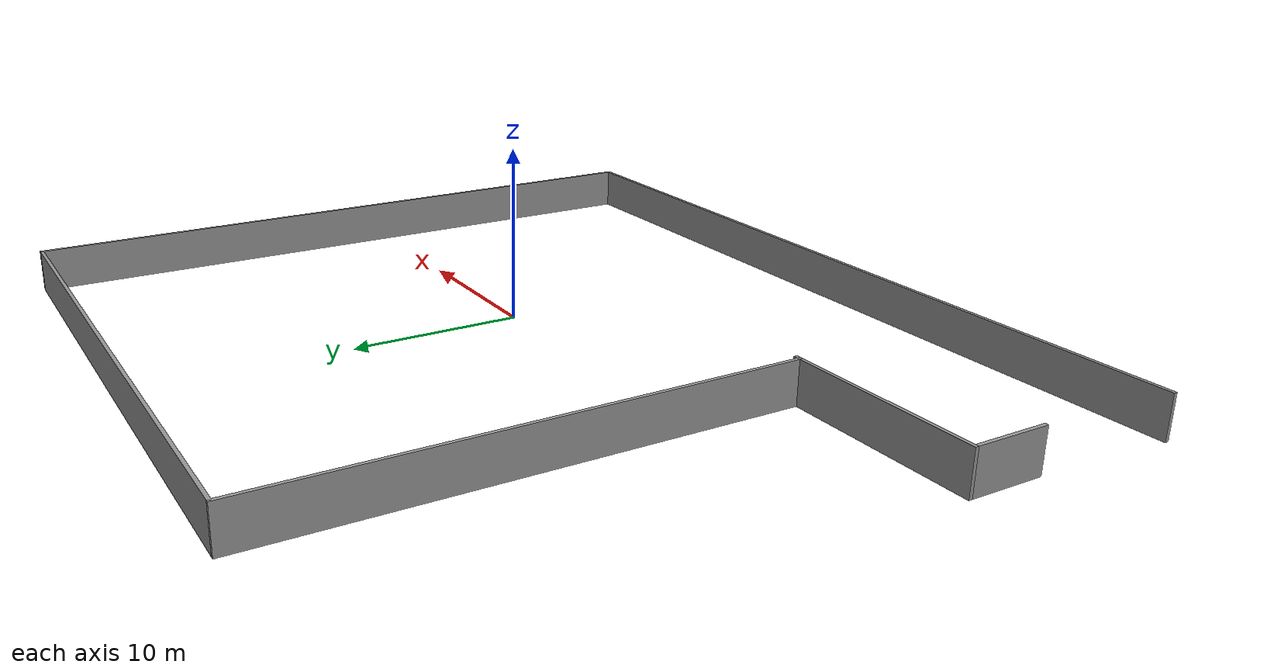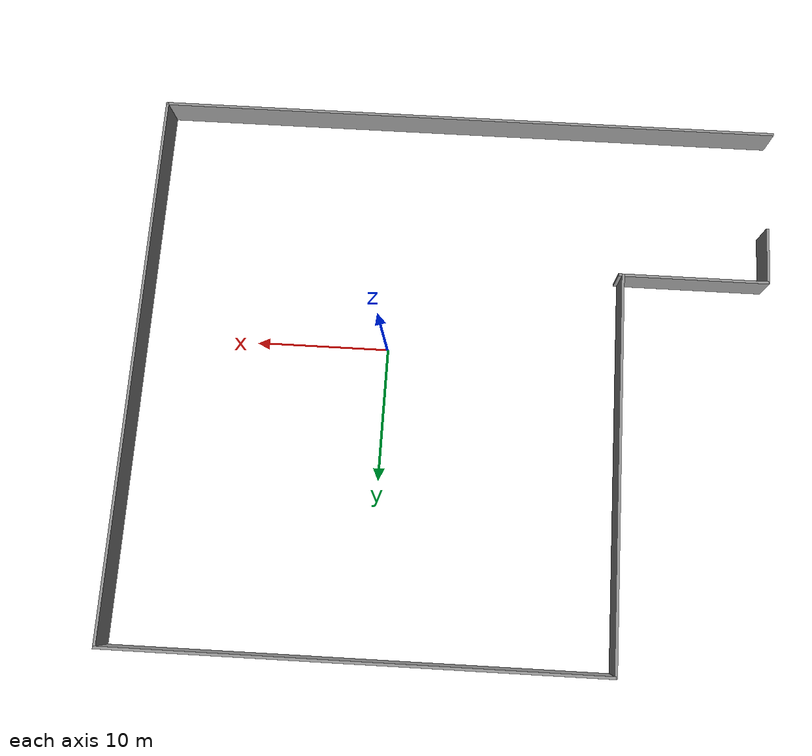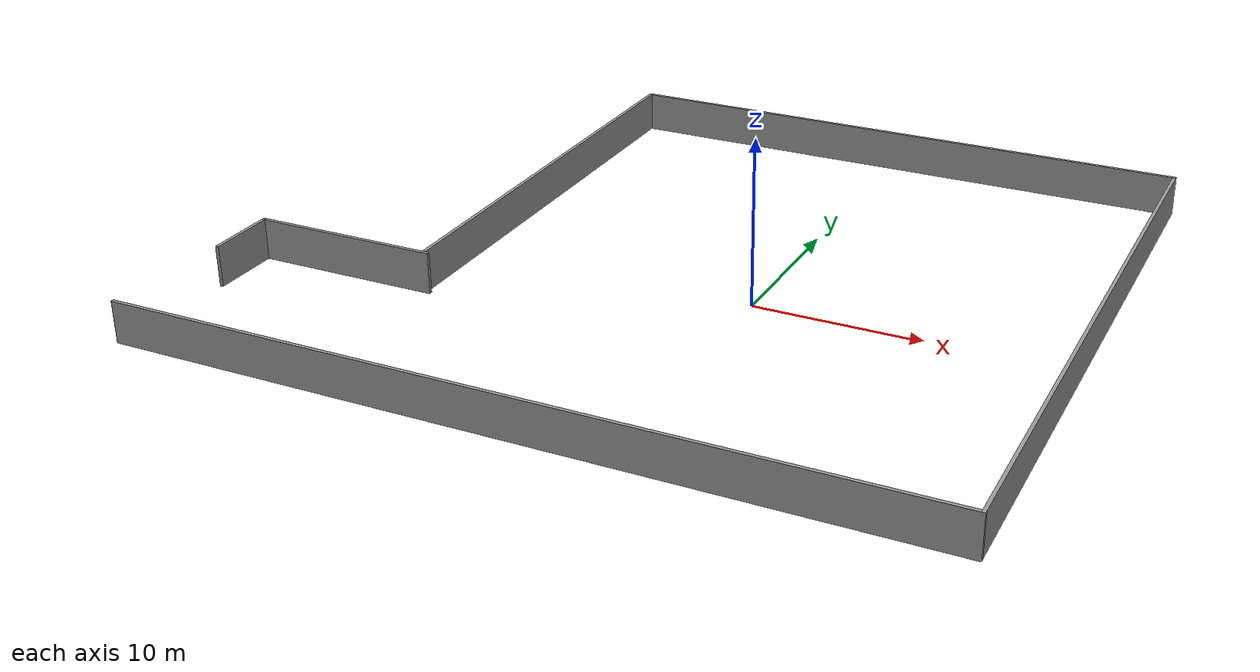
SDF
<?xml version='1.0'?>
<sdf version='1.4'>
  <model name='test_2'>
    <link name='Wall_15'>
      <collision name='Wall_15_Collision'>
        <geometry>
          <box>
            <size>29.323 0.2 2.5</size>
          </box>
        </geometry>
        <pose>0 0 1.25 0 -0 0</pose>
      </collision>
      <visual name='Wall_15_Visual'>
        <pose>0 0 1.25 0 -0 0</pose>
        <geometry>
          <box>
            <size>29.323 0.2 2.5</size>
          </box>
        </geometry>
        <material>
          <script>
            <uri>file://media/materials/scripts/gazebo.material</uri>
            <name>Gazebo/Grey</name>
          </script>
        </material>
      </visual>
      <velocity_decay>
        <linear>0</linear>
        <angular>0</angular>
      </velocity_decay>
      <pose>-17.5269 8.31182 0 0 -0 1.5708</pose>
    </link>
    <link name='Wall_16'>
      <collision name='Wall_16_Collision'>
        <geometry>
          <box>
            <size>36.2926 0.2 2.5</size>
          </box>
        </geometry>
        <pose>0 0 1.25 0 -0 0</pose>
      </collision>
      <visual name='Wall_16_Visual'>
        <pose>0 0 1.25 0 -0 0</pose>
        <geometry>
          <box>
            <size>36.2926 0.2 2.5</size>
          </box>
        </geometry>
        <material>
          <script>
            <uri>file://media/materials/scripts/gazebo.material</uri>
            <name>Gazebo/Grey</name>
          </script>
        </material>
      </visual>
      <velocity_decay>
        <linear>0</linear>
        <angular>0</angular>
      </velocity_decay>
      <pose>0.51939 22.8733 0 0 -0 0</pose>
    </link>
    <link name='Wall_17'>
      <collision name='Wall_17_Collision'>
        <geometry>
          <box>
            <size>41.5198 0.2 2.5</size>
          </box>
        </geometry>
        <pose>0 0 1.25 0 -0 0</pose>
      </collision>
      <visual name='Wall_17_Visual'>
        <pose>0 0 1.25 0 -0 0</pose>
        <geometry>
          <box>
            <size>41.5198 0.2 2.5</size>
          </box>
        </geometry>
        <material>
          <script>
            <uri>file://media/materials/scripts/gazebo.material</uri>
            <name>Gazebo/Grey</name>
          </script>
        </material>
      </visual>
      <velocity_decay>
        <linear>0</linear>
        <angular>0</angular>
      </velocity_decay>
      <pose>18.5657 2.21341 0 0 0 -1.5708</pose>
    </link>
    <link name='Wall_18'>
      <collision name='Wall_18_Collision'>
        <geometry>
          <box>
            <size>47.7427 0.2 2.5</size>
          </box>
        </geometry>
        <pose>0 0 1.25 0 -0 0</pose>
      </collision>
      <visual name='Wall_18_Visual'>
        <pose>0 0 1.25 0 -0 0</pose>
        <geometry>
          <box>
            <size>47.7427 0.2 2.5</size>
          </box>
        </geometry>
        <material>
          <script>
            <uri>file://media/materials/scripts/gazebo.material</uri>
            <name>Gazebo/Grey</name>
          </script>
        </material>
      </visual>
      <velocity_decay>
        <linear>0</linear>
        <angular>0</angular>
      </velocity_decay>
      <pose>-5.20564 -18.4465 0 0 -0 3.14159</pose>
    </link>
    <link name='Wall_20'>
      <collision name='Wall_20_Collision'>
        <geometry>
          <box>
            <size>11.4012 0.2 2.5</size>
          </box>
        </geometry>
        <pose>0 0 1.25 0 -0 0</pose>
      </collision>
      <visual name='Wall_20_Visual'>
        <pose>0 0 1.25 0 -0 0</pose>
        <geometry>
          <box>
            <size>11.4012 0.2 2.5</size>
          </box>
        </geometry>
        <material>
          <script>
            <uri>file://media/materials/scripts/gazebo.material</uri>
            <name>Gazebo/Grey</name>
          </script>
        </material>
      </visual>
      <velocity_decay>
        <linear>0</linear>
        <angular>0</angular>
      </velocity_decay>
      <pose>-22.8786 -6.24969 0 0 -0 3.14159</pose>
    </link>
    <link name='Wall_21'>
      <collision name='Wall_21_Collision'>
        <geometry>
          <box>
            <size>4.43155 0.2 2.5</size>
          </box>
        </geometry>
        <pose>0 0 1.25 0 -0 0</pose>
      </collision>
      <visual name='Wall_21_Visual'>
        <pose>0 0 1.25 0 -0 0</pose>
        <geometry>
          <box>
            <size>4.43155 0.2 2.5</size>
          </box>
        </geometry>
        <material>
          <script>
            <uri>file://media/materials/scripts/gazebo.material</uri>
            <name>Gazebo/Grey</name>
          </script>
        </material>
      </visual>
      <velocity_decay>
        <linear>0</linear>
        <angular>0</angular>
      </velocity_decay>
      <pose>-28.4792 -8.36546 0 0 0 -1.5708</pose>
    </link>
    <static>1</static>
  </model>
</sdf>
